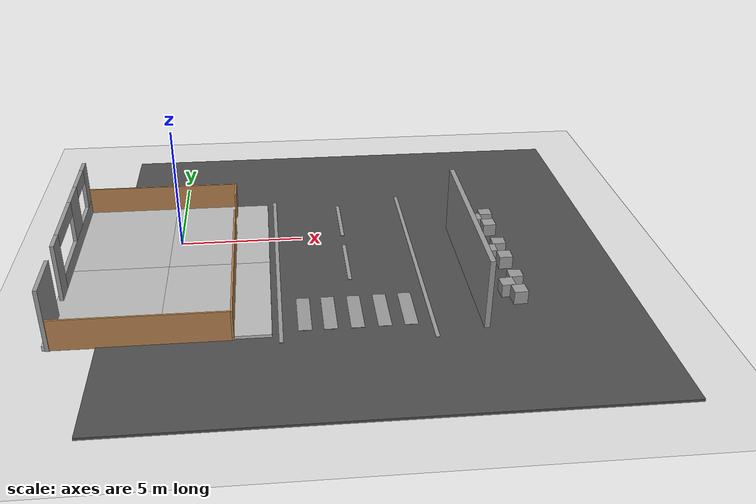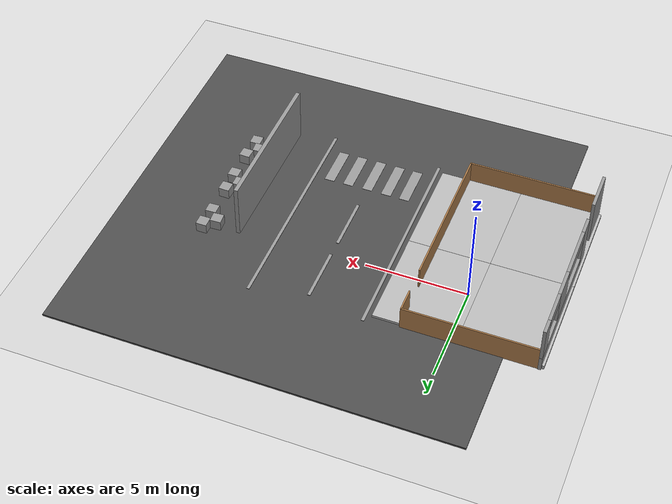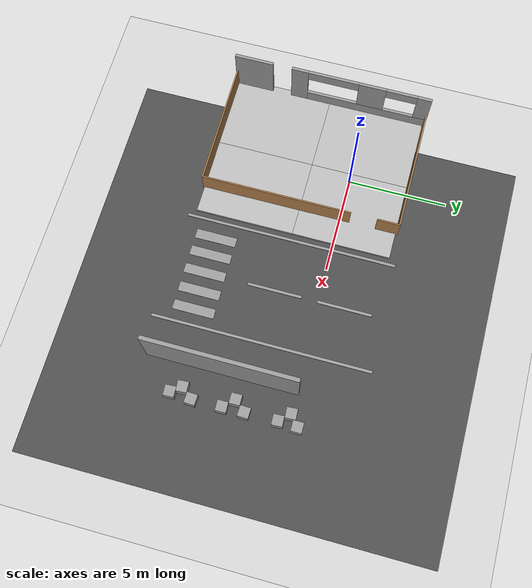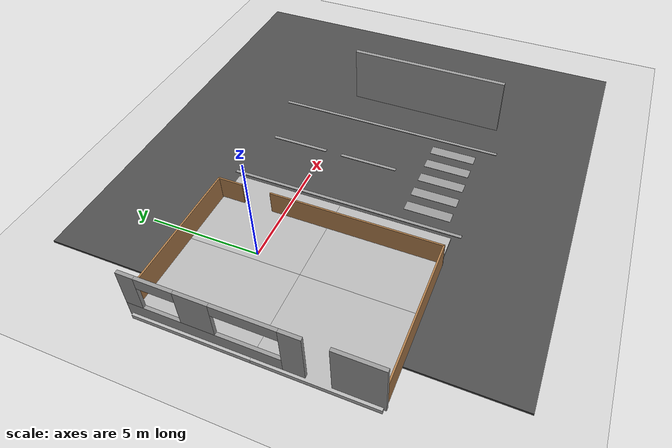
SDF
<sdf version="1.6">
 <world name="default">
  <model name="ground_plane">
   <static>1</static>
   <link name="link">
    <collision name="collision">
     <geometry><plane><normal>0 0 1</normal><size>100 100</size></plane></geometry>
     <surface>
      <contact><collide_bitmask>65535</collide_bitmask></contact>
      <friction><ode><mu>100</mu><mu2>50</mu2></ode></friction>
     </surface>
    </collision>
    <visual name="visual">
     <cast_shadows>0</cast_shadows>
     <geometry><plane><normal>0 0 1</normal><size>100 100</size></plane></geometry>
     <material>
      <script><uri>file://media/materials/scripts/gazebo.material</uri><name>Gazebo/Grey</name></script>
     </material>
    </visual>
   </link>
  </model>
  <model name="grey_wall_1">
   <static>1</static>
   <link name="link">
    <pose>0 0 1.4 0 -0 0</pose>
    <collision name="collision"><geometry><box><size>7.5 0.2 2.8</size></box></geometry></collision>
    <visual name="visual">
     <cast_shadows>0</cast_shadows>
     <geometry><box><size>7.5 0.2 2.8</size></box></geometry>
     <material>
      <script>
       <uri>model://grey_wall/materials/scripts</uri>
       <uri>model://grey_wall/materials/textures</uri>
       <name>vrc/grey_wall</name>
      </script>
     </material>
    </visual>
   </link>
   <pose>11.3606 -3.46174 0 0 -0 1.56876</pose>
  </model>
  <model name="mud_box">
   <static>1</static>
   <link name="link">
    <collision name="collision"><geometry><box><size>8 10 0.2</size></box></geometry></collision>
    <visual name="visual_1">
     <pose>-2 2.5 0 0 -0 0</pose>
     <cast_shadows>0</cast_shadows>
     <geometry><box><size>4 5 0.2</size></box></geometry>
     <material>
      <script>
       <uri>model://mud_box/materials/scripts</uri>
       <uri>model://mud_box/materials/textures</uri>
       <name>vrc/mud</name>
      </script>
     </material>
    </visual>
    <visual name="visual_2">
     <pose>2 2.5 0 0 -0 0</pose>
     <cast_shadows>0</cast_shadows>
     <geometry><box><size>4 5 0.2</size></box></geometry>
     <material>
      <script>
       <uri>model://mud_box/materials/scripts</uri>
       <uri>model://mud_box/materials/textures</uri>
       <name>vrc/mud</name>
      </script>
     </material>
    </visual>
    <visual name="visual_3">
     <pose>2 -2.5 0 0 -0 0</pose>
     <cast_shadows>0</cast_shadows>
     <geometry><box><size>4 5 0.2</size></box></geometry>
     <material>
      <script>
       <uri>model://mud_box/materials/scripts</uri>
       <uri>model://mud_box/materials/textures</uri>
       <name>vrc/mud</name>
      </script>
     </material>
    </visual>
    <visual name="visual_4">
     <pose>-2 -2.5 0 0 -0 0</pose>
     <cast_shadows>0</cast_shadows>
     <geometry><box><size>4 5 0.2</size></box></geometry>
     <material>
      <script>
       <uri>model://mud_box/materials/scripts</uri>
       <uri>model://mud_box/materials/textures</uri>
       <name>vrc/mud</name>
      </script>
     </material>
    </visual>
   </link>
   <pose>-0.378067 -2.09967 0.049154 0 -0 0</pose>
  </model>
  <model name="unit_box_0_clone_22_clone_14">
   <pose>12.4802 0.207968 0.299729 -0.001293 -0.020946 0.062639</pose>
   <link name="link">
    <inertial>
     <mass>1</mass>
     <inertia>
      <ixx>0.166667</ixx>
      <ixy>0</ixy>
      <ixz>0</ixz>
      <iyy>0.166667</iyy>
      <iyz>0</iyz>
      <izz>0.166667</izz>
     </inertia>
    </inertial>
    <collision name="collision">
     <geometry><box><size>0.530101 0.530101 0.530101</size></box></geometry>
    </collision>
    <visual name="visual">
     <geometry><box><size>0.530101 0.530101 0.530101</size></box></geometry>
     <material>
      <script><name>Gazebo/Grey</name><uri>file://media/materials/scripts/gazebo.material</uri></script>
     </material>
    </visual>
   </link>
  </model>
  <model name="unit_box_0_clone_22_clone_15">
   <pose>13.0071 0.621542 0.301237 -0.028066 3.9e-05 0.001398</pose>
   <link name="link">
    <inertial>
     <mass>1</mass>
     <inertia>
      <ixx>0.166667</ixx>
      <ixy>0</ixy>
      <ixz>0</ixz>
      <iyy>0.166667</iyy>
      <iyz>0</iyz>
      <izz>0.166667</izz>
     </inertia>
    </inertial>
    <collision name="collision">
     <geometry><box><size>0.530101 0.530101 0.530101</size></box></geometry>
    </collision>
    <visual name="visual">
     <geometry><box><size>0.530101 0.530101 0.530101</size></box></geometry>
     <material>
      <script><name>Gazebo/Grey</name><uri>file://media/materials/scripts/gazebo.material</uri></script>
     </material>
    </visual>
   </link>
  </model>
  <model name="unit_box_0_clone_22_clone_17">
   <pose>12.9535 -0.308319 0.299974 0.022308 -0.000883 0.039539</pose>
   <link name="link">
    <inertial>
     <mass>1</mass>
     <inertia>
      <ixx>0.166667</ixx>
      <ixy>0</ixy>
      <ixz>0</ixz>
      <iyy>0.166667</iyy>
      <iyz>0</iyz>
      <izz>0.166667</izz>
     </inertia>
    </inertial>
    <collision name="collision">
     <geometry><box><size>0.530101 0.530101 0.530101</size></box></geometry>
    </collision>
    <visual name="visual">
     <geometry><box><size>0.530101 0.530101 0.530101</size></box></geometry>
     <material>
      <script><name>Gazebo/Grey</name><uri>file://media/materials/scripts/gazebo.material</uri></script>
     </material>
    </visual>
   </link>
  </model>
  <model name="unit_box_0_clone_22_clone_18">
   <pose>12.986 -1.9289 0.301242 -0.027302 -0.0008 -0.029302</pose>
   <link name="link">
    <inertial>
     <mass>1</mass>
     <inertia>
      <ixx>0.166667</ixx>
      <ixy>0</ixy>
      <ixz>0</ixz>
      <iyy>0.166667</iyy>
      <iyz>0</iyz>
      <izz>0.166667</izz>
     </inertia>
    </inertial>
    <collision name="collision">
     <geometry><box><size>0.530101 0.530101 0.530101</size></box></geometry>
    </collision>
    <visual name="visual">
     <geometry><box><size>0.530101 0.530101 0.530101</size></box></geometry>
     <material>
      <script><name>Gazebo/Grey</name><uri>file://media/materials/scripts/gazebo.material</uri></script>
     </material>
    </visual>
   </link>
  </model>
  <model name="unit_box_0_clone_22_clone_19">
   <pose>12.5147 -2.46412 0.299758 0 -0.022379 0.005323</pose>
   <link name="link">
    <inertial>
     <mass>1</mass>
     <inertia>
      <ixx>0.166667</ixx>
      <ixy>0</ixy>
      <ixz>0</ixz>
      <iyy>0.166667</iyy>
      <iyz>0</iyz>
      <izz>0.166667</izz>
     </inertia>
    </inertial>
    <collision name="collision">
     <geometry><box><size>0.530101 0.530101 0.530101</size></box></geometry>
    </collision>
    <visual name="visual">
     <geometry><box><size>0.530101 0.530101 0.530101</size></box></geometry>
     <material>
      <script><name>Gazebo/Grey</name><uri>file://media/materials/scripts/gazebo.material</uri></script>
     </material>
    </visual>
   </link>
  </model>
  <model name="unit_box_0_clone_22_clone_20">
   <pose>13 -3.00001 0.293891 -7e-06 4e-06 0.018974</pose>
   <link name="link">
    <inertial>
     <mass>1</mass>
     <inertia>
      <ixx>0.166667</ixx>
      <ixy>0</ixy>
      <ixz>0</ixz>
      <iyy>0.166667</iyy>
      <iyz>0</iyz>
      <izz>0.166667</izz>
     </inertia>
    </inertial>
    <collision name="collision">
     <geometry><box><size>0.530101 0.530101 0.530101</size></box></geometry>
    </collision>
    <visual name="visual">
     <geometry><box><size>0.530101 0.530101 0.530101</size></box></geometry>
     <material>
      <script><name>Gazebo/Grey</name><uri>file://media/materials/scripts/gazebo.material</uri></script>
     </material>
    </visual>
   </link>
  </model>
  <model name="unit_box_0_clone_22_clone_22">
   <pose>13.0359 -4.48797 0.30161 -0.028519 -0.001007 -0.035293</pose>
   <link name="link">
    <inertial>
     <mass>1</mass>
     <inertia>
      <ixx>0.166667</ixx>
      <ixy>0</ixy>
      <ixz>0</ixz>
      <iyy>0.166667</iyy>
      <iyz>0</iyz>
      <izz>0.166667</izz>
     </inertia>
    </inertial>
    <collision name="collision">
     <geometry><box><size>0.530101 0.530101 0.530101</size></box></geometry>
    </collision>
    <visual name="visual">
     <geometry><box><size>0.530101 0.530101 0.530101</size></box></geometry>
     <material>
      <script><name>Gazebo/Grey</name><uri>file://media/materials/scripts/gazebo.material</uri></script>
     </material>
    </visual>
   </link>
  </model>
  <model name="unit_box_0_clone_22_clone_24">
   <pose>12.5941 -5.0363 0.30099 0 -0.027146 0.06489</pose>
   <link name="link">
    <inertial>
     <mass>1</mass>
     <inertia>
      <ixx>0.166667</ixx>
      <ixy>0</ixy>
      <ixz>0</ixz>
      <iyy>0.166667</iyy>
      <iyz>0</iyz>
      <izz>0.166667</izz>
     </inertia>
    </inertial>
    <collision name="collision">
     <geometry><box><size>0.530101 0.530101 0.530101</size></box></geometry>
    </collision>
    <visual name="visual">
     <geometry><box><size>0.530101 0.530101 0.530101</size></box></geometry>
     <material>
      <script><name>Gazebo/Grey</name><uri>file://media/materials/scripts/gazebo.material</uri></script>
     </material>
    </visual>
   </link>
  </model>
  <model name="unit_box_0_clone_22_clone_25">
   <pose>12.9423 -5.55077 0.293889 -1.1e-05 7e-06 0.049074</pose>
   <link name="link">
    <inertial>
     <mass>1</mass>
     <inertia>
      <ixx>0.166667</ixx>
      <ixy>0</ixy>
      <ixz>0</ixz>
      <iyy>0.166667</iyy>
      <iyz>0</iyz>
      <izz>0.166667</izz>
     </inertia>
    </inertial>
    <collision name="collision">
     <geometry><box><size>0.530101 0.530101 0.530101</size></box></geometry>
    </collision>
    <visual name="visual">
     <geometry><box><size>0.530101 0.530101 0.530101</size></box></geometry>
     <material>
      <script><name>Gazebo/Grey</name><uri>file://media/materials/scripts/gazebo.material</uri></script>
     </material>
    </visual>
   </link>
  </model>
  <model name="world_frame">
   <link name="Wall_100">
    <pose>-15.3271 -4.993 0 0 -0 0</pose>
    <visual name="Wall_100_Visual">
     <pose>0 0 0.625 0 -0 0</pose>
     <geometry><box><size>6.495 0.07 1.25</size></box></geometry>
     <material>
      <script><uri>file://media/materials/scripts/gazebo.material</uri><name>Gazebo/Wood</name></script>
      <ambient>1 1 1 1</ambient>
      <shader type="pixel"/>
      <diffuse>1 1 1 1</diffuse>
      <specular>0.2 0.2 0.2 1</specular>
      <emissive>0 0 0 1</emissive>
     </material>
     <meta><layer>0</layer></meta>
    </visual>
    <collision name="Wall_100_Collision">
     <pose>0 0 0.625 0 -0 0</pose>
     <geometry><box><size>6.495 0.07 1.25</size></box></geometry>
     <surface>
      <friction>
       <ode><mu>1</mu><mu2>1</mu2><fdir1>0 0 0</fdir1><slip1>0</slip1><slip2>0</slip2></ode>
       <torsional>
        <coefficient>1</coefficient>
        <patch_radius>0</patch_radius>
        <surface_radius>0</surface_radius>
        <use_patch_radius>1</use_patch_radius>
        <ode><slip>0</slip></ode>
       </torsional>
      </friction>
      <bounce><restitution_coefficient>0</restitution_coefficient><threshold>1e+06</threshold></bounce>
      <contact>
       <collide_without_contact>0</collide_without_contact>
       <collide_without_contact_bitmask>1</collide_without_contact_bitmask>
       <collide_bitmask>1</collide_bitmask>
       <ode>
        <soft_cfm>0</soft_cfm>
        <soft_erp>0.2</soft_erp>
        <kp>1e+13</kp>
        <kd>1</kd>
        <max_vel>0.01</max_vel>
        <min_depth>0</min_depth>
       </ode>
       <bullet>
        <split_impulse>1</split_impulse>
        <split_impulse_penetration_threshold>-0.01</split_impulse_penetration_threshold>
        <soft_cfm>0</soft_cfm>
        <soft_erp>0.2</soft_erp>
        <kp>1e+13</kp>
        <kd>1</kd>
       </bullet>
      </contact>
     </surface>
    </collision>
   </link>
   <link name="Wall_101">
    <pose>-12.1146 -1.193 0 0 -0 1.5708</pose>
    <visual name="Wall_101_Visual">
     <pose>0 0 0.625 0 -0 0</pose>
     <geometry><box><size>7.6704 0.07 1.25</size></box></geometry>
     <material>
      <script><uri>file://media/materials/scripts/gazebo.material</uri><name>Gazebo/Wood</name></script>
      <ambient>1 1 1 1</ambient>
      <shader type="pixel"/>
      <diffuse>1 1 1 1</diffuse>
      <specular>0.2 0.2 0.2 1</specular>
      <emissive>0 0 0 1</emissive>
     </material>
     <meta><layer>0</layer></meta>
    </visual>
    <collision name="Wall_101_Collision">
     <pose>0 0 0.625 0 -0 0</pose>
     <geometry><box><size>7.6704 0.07 1.25</size></box></geometry>
     <surface>
      <friction>
       <ode><mu>1</mu><mu2>1</mu2><fdir1>0 0 0</fdir1><slip1>0</slip1><slip2>0</slip2></ode>
       <torsional>
        <coefficient>1</coefficient>
        <patch_radius>0</patch_radius>
        <surface_radius>0</surface_radius>
        <use_patch_radius>1</use_patch_radius>
        <ode><slip>0</slip></ode>
       </torsional>
      </friction>
      <bounce><restitution_coefficient>0</restitution_coefficient><threshold>1e+06</threshold></bounce>
      <contact>
       <collide_without_contact>0</collide_without_contact>
       <collide_without_contact_bitmask>1</collide_without_contact_bitmask>
       <collide_bitmask>1</collide_bitmask>
       <ode>
        <soft_cfm>0</soft_cfm>
        <soft_erp>0.2</soft_erp>
        <kp>1e+13</kp>
        <kd>1</kd>
        <max_vel>0.01</max_vel>
        <min_depth>0</min_depth>
       </ode>
       <bullet>
        <split_impulse>1</split_impulse>
        <split_impulse_penetration_threshold>-0.01</split_impulse_penetration_threshold>
        <soft_cfm>0</soft_cfm>
        <soft_erp>0.2</soft_erp>
        <kp>1e+13</kp>
        <kd>1</kd>
       </bullet>
      </contact>
     </surface>
    </collision>
   </link>
   <link name="Wall_131">
    <pose>-18.5396 -4.068 0 0 -0 1.5708</pose>
    <visual name="Wall_131_Visual">
     <pose>0 0 1.25 0 -0 0</pose>
     <geometry><box><size>2 0.15 2.5</size></box></geometry>
     <material>
      <script><uri>file://media/materials/scripts/gazebo.material</uri><name>Gazebo/Grey</name></script>
      <ambient>1 1 1 1</ambient>
      <shader type="pixel"/>
      <diffuse>0.7 0.7 0.7 1</diffuse>
      <specular>0.01 0.01 0.01 1</specular>
      <emissive>0 0 0 1</emissive>
     </material>
     <meta><layer>0</layer></meta>
    </visual>
    <collision name="Wall_131_Collision">
     <pose>0 0 1.25 0 -0 0</pose>
     <geometry><box><size>2 0.15 2.5</size></box></geometry>
     <surface>
      <friction>
       <ode><mu>1</mu><mu2>1</mu2><fdir1>0 0 0</fdir1><slip1>0</slip1><slip2>0</slip2></ode>
       <torsional>
        <coefficient>1</coefficient>
        <patch_radius>0</patch_radius>
        <surface_radius>0</surface_radius>
        <use_patch_radius>1</use_patch_radius>
        <ode><slip>0</slip></ode>
       </torsional>
      </friction>
      <bounce><restitution_coefficient>0</restitution_coefficient><threshold>1e+06</threshold></bounce>
      <contact>
       <collide_without_contact>0</collide_without_contact>
       <collide_without_contact_bitmask>1</collide_without_contact_bitmask>
       <collide_bitmask>1</collide_bitmask>
       <ode>
        <soft_cfm>0</soft_cfm>
        <soft_erp>0.2</soft_erp>
        <kp>1e+13</kp>
        <kd>1</kd>
        <max_vel>0.01</max_vel>
        <min_depth>0</min_depth>
       </ode>
       <bullet>
        <split_impulse>1</split_impulse>
        <split_impulse_penetration_threshold>-0.01</split_impulse_penetration_threshold>
        <soft_cfm>0</soft_cfm>
        <soft_erp>0.2</soft_erp>
        <kp>1e+13</kp>
        <kd>1</kd>
       </bullet>
      </contact>
     </surface>
    </collision>
   </link>
   <link name="Wall_136">
    <pose>-18.5517 1.54493 0 0 -0 1.5708</pose>
    <visual name="Wall_136_Visual_0">
     <pose>-3.1871 0 1.25 0 -0 0</pose>
     <geometry><box><size>0.875792 0.15 2.5</size></box></geometry>
     <material>
      <script><uri>file://media/materials/scripts/gazebo.material</uri><name>Gazebo/Grey</name></script>
      <ambient>1 1 1 1</ambient>
      <shader type="pixel"/>
      <diffuse>0.7 0.7 0.7 1</diffuse>
      <specular>0.01 0.01 0.01 1</specular>
      <emissive>0 0 0 1</emissive>
     </material>
     <meta><layer>0</layer></meta>
    </visual>
    <visual name="Wall_136_Visual_1">
     <pose>0.437896 0 0.375 0 -0 0</pose>
     <geometry><box><size>6.37421 0.15 0.75</size></box></geometry>
     <material>
      <script><uri>file://media/materials/scripts/gazebo.material</uri><name>Gazebo/Grey</name></script>
      <ambient>1 1 1 1</ambient>
      <shader type="pixel"/>
      <diffuse>0.7 0.7 0.7 1</diffuse>
      <specular>0.01 0.01 0.01 1</specular>
      <emissive>0 0 0 1</emissive>
     </material>
     <meta><layer>0</layer></meta>
    </visual>
    <visual name="Wall_136_Visual_2">
     <pose>0.578795 0 1.625 0 -0 0</pose>
     <geometry><box><size>1.40688 0.15 1.75</size></box></geometry>
     <material>
      <script><uri>file://media/materials/scripts/gazebo.material</uri><name>Gazebo/Grey</name></script>
      <ambient>1 1 1 1</ambient>
      <shader type="pixel"/>
      <diffuse>0.7 0.7 0.7 1</diffuse>
      <specular>0.01 0.01 0.01 1</specular>
      <emissive>0 0 0 1</emissive>
     </material>
     <meta><layer>0</layer></meta>
    </visual>
    <visual name="Wall_136_Visual_3">
     <pose>3.25362 0 1.625 0 -0 0</pose>
     <geometry><box><size>0.742767 0.15 1.75</size></box></geometry>
     <material>
      <script><uri>file://media/materials/scripts/gazebo.material</uri><name>Gazebo/Grey</name></script>
      <ambient>1 1 1 1</ambient>
      <shader type="pixel"/>
      <diffuse>0.7 0.7 0.7 1</diffuse>
      <specular>0.01 0.01 0.01 1</specular>
      <emissive>0 0 0 1</emissive>
     </material>
     <meta><layer>0</layer></meta>
    </visual>
    <visual name="Wall_136_Visual_4">
     <pose>-1.43693 0 2.225 0 -0 0</pose>
     <geometry><box><size>2.62457 0.15 0.55</size></box></geometry>
     <material>
      <script><uri>file://media/materials/scripts/gazebo.material</uri><name>Gazebo/Grey</name></script>
      <ambient>1 1 1 1</ambient>
      <shader type="pixel"/>
      <diffuse>0.7 0.7 0.7 1</diffuse>
      <specular>0.01 0.01 0.01 1</specular>
      <emissive>0 0 0 1</emissive>
     </material>
     <meta><layer>0</layer></meta>
    </visual>
    <visual name="Wall_136_Visual_5">
     <pose>2.08223 0 2.225 0 -0 0</pose>
     <geometry><box><size>1.6 0.15 0.55</size></box></geometry>
     <material>
      <script><uri>file://media/materials/scripts/gazebo.material</uri><name>Gazebo/Grey</name></script>
      <ambient>1 1 1 1</ambient>
      <shader type="pixel"/>
      <diffuse>0.7 0.7 0.7 1</diffuse>
      <specular>0.01 0.01 0.01 1</specular>
      <emissive>0 0 0 1</emissive>
     </material>
     <meta><layer>0</layer></meta>
    </visual>
    <collision name="Wall_136_Collision_0">
     <pose>-3.1871 0 1.25 0 -0 0</pose>
     <geometry><box><size>0.875792 0.15 2.5</size></box></geometry>
     <surface>
      <friction>
       <ode><mu>1</mu><mu2>1</mu2><fdir1>0 0 0</fdir1><slip1>0</slip1><slip2>0</slip2></ode>
       <torsional>
        <coefficient>1</coefficient>
        <patch_radius>0</patch_radius>
        <surface_radius>0</surface_radius>
        <use_patch_radius>1</use_patch_radius>
        <ode><slip>0</slip></ode>
       </torsional>
      </friction>
      <bounce><restitution_coefficient>0</restitution_coefficient><threshold>1e+06</threshold></bounce>
      <contact>
       <collide_without_contact>0</collide_without_contact>
       <collide_without_contact_bitmask>1</collide_without_contact_bitmask>
       <collide_bitmask>1</collide_bitmask>
       <ode>
        <soft_cfm>0</soft_cfm>
        <soft_erp>0.2</soft_erp>
        <kp>1e+13</kp>
        <kd>1</kd>
        <max_vel>0.01</max_vel>
        <min_depth>0</min_depth>
       </ode>
       <bullet>
        <split_impulse>1</split_impulse>
        <split_impulse_penetration_threshold>-0.01</split_impulse_penetration_threshold>
        <soft_cfm>0</soft_cfm>
        <soft_erp>0.2</soft_erp>
        <kp>1e+13</kp>
        <kd>1</kd>
       </bullet>
      </contact>
     </surface>
    </collision>
    <collision name="Wall_136_Collision_1">
     <pose>0.437896 0 0.375 0 -0 0</pose>
     <geometry><box><size>6.37421 0.15 0.75</size></box></geometry>
     <surface>
      <friction>
       <ode><mu>1</mu><mu2>1</mu2><fdir1>0 0 0</fdir1><slip1>0</slip1><slip2>0</slip2></ode>
       <torsional>
        <coefficient>1</coefficient>
        <patch_radius>0</patch_radius>
        <surface_radius>0</surface_radius>
        <use_patch_radius>1</use_patch_radius>
        <ode><slip>0</slip></ode>
       </torsional>
      </friction>
      <bounce><restitution_coefficient>0</restitution_coefficient><threshold>1e+06</threshold></bounce>
      <contact>
       <collide_without_contact>0</collide_without_contact>
       <collide_without_contact_bitmask>1</collide_without_contact_bitmask>
       <collide_bitmask>1</collide_bitmask>
       <ode>
        <soft_cfm>0</soft_cfm>
        <soft_erp>0.2</soft_erp>
        <kp>1e+13</kp>
        <kd>1</kd>
        <max_vel>0.01</max_vel>
        <min_depth>0</min_depth>
       </ode>
       <bullet>
        <split_impulse>1</split_impulse>
        <split_impulse_penetration_threshold>-0.01</split_impulse_penetration_threshold>
        <soft_cfm>0</soft_cfm>
        <soft_erp>0.2</soft_erp>
        <kp>1e+13</kp>
        <kd>1</kd>
       </bullet>
      </contact>
     </surface>
    </collision>
    <collision name="Wall_136_Collision_2">
     <pose>0.578795 0 1.625 0 -0 0</pose>
     <geometry><box><size>1.40688 0.15 1.75</size></box></geometry>
     <surface>
      <friction>
       <ode><mu>1</mu><mu2>1</mu2><fdir1>0 0 0</fdir1><slip1>0</slip1><slip2>0</slip2></ode>
       <torsional>
        <coefficient>1</coefficient>
        <patch_radius>0</patch_radius>
        <surface_radius>0</surface_radius>
        <use_patch_radius>1</use_patch_radius>
        <ode><slip>0</slip></ode>
       </torsional>
      </friction>
      <bounce><restitution_coefficient>0</restitution_coefficient><threshold>1e+06</threshold></bounce>
      <contact>
       <collide_without_contact>0</collide_without_contact>
       <collide_without_contact_bitmask>1</collide_without_contact_bitmask>
       <collide_bitmask>1</collide_bitmask>
       <ode>
        <soft_cfm>0</soft_cfm>
        <soft_erp>0.2</soft_erp>
        <kp>1e+13</kp>
        <kd>1</kd>
        <max_vel>0.01</max_vel>
        <min_depth>0</min_depth>
       </ode>
       <bullet>
        <split_impulse>1</split_impulse>
        <split_impulse_penetration_threshold>-0.01</split_impulse_penetration_threshold>
        <soft_cfm>0</soft_cfm>
        <soft_erp>0.2</soft_erp>
        <kp>1e+13</kp>
        <kd>1</kd>
       </bullet>
      </contact>
     </surface>
    </collision>
    <collision name="Wall_136_Collision_4">
     <pose>-1.43693 0 2.225 0 -0 0</pose>
     <geometry><box><size>2.62457 0.15 0.55</size></box></geometry>
     <surface>
      <friction>
       <ode><mu>1</mu><mu2>1</mu2><fdir1>0 0 0</fdir1><slip1>0</slip1><slip2>0</slip2></ode>
       <torsional>
        <coefficient>1</coefficient>
        <patch_radius>0</patch_radius>
        <surface_radius>0</surface_radius>
        <use_patch_radius>1</use_patch_radius>
        <ode><slip>0</slip></ode>
       </torsional>
      </friction>
      <bounce><restitution_coefficient>0</restitution_coefficient><threshold>1e+06</threshold></bounce>
      <contact>
       <collide_without_contact>0</collide_without_contact>
       <collide_without_contact_bitmask>1</collide_without_contact_bitmask>
       <collide_bitmask>1</collide_bitmask>
       <ode>
        <soft_cfm>0</soft_cfm>
        <soft_erp>0.2</soft_erp>
        <kp>1e+13</kp>
        <kd>1</kd>
        <max_vel>0.01</max_vel>
        <min_depth>0</min_depth>
       </ode>
       <bullet>
        <split_impulse>1</split_impulse>
        <split_impulse_penetration_threshold>-0.01</split_impulse_penetration_threshold>
        <soft_cfm>0</soft_cfm>
        <soft_erp>0.2</soft_erp>
        <kp>1e+13</kp>
        <kd>1</kd>
       </bullet>
      </contact>
     </surface>
    </collision>
    <collision name="Wall_136_Collision_3">
     <pose>3.25362 0 1.625 0 -0 0</pose>
     <geometry><box><size>0.742767 0.15 1.75</size></box></geometry>
     <surface>
      <friction>
       <ode><mu>1</mu><mu2>1</mu2><fdir1>0 0 0</fdir1><slip1>0</slip1><slip2>0</slip2></ode>
       <torsional>
        <coefficient>1</coefficient>
        <patch_radius>0</patch_radius>
        <surface_radius>0</surface_radius>
        <use_patch_radius>1</use_patch_radius>
        <ode><slip>0</slip></ode>
       </torsional>
      </friction>
      <bounce><restitution_coefficient>0</restitution_coefficient><threshold>1e+06</threshold></bounce>
      <contact>
       <collide_without_contact>0</collide_without_contact>
       <collide_without_contact_bitmask>1</collide_without_contact_bitmask>
       <collide_bitmask>1</collide_bitmask>
       <ode>
        <soft_cfm>0</soft_cfm>
        <soft_erp>0.2</soft_erp>
        <kp>1e+13</kp>
        <kd>1</kd>
        <max_vel>0.01</max_vel>
        <min_depth>0</min_depth>
       </ode>
       <bullet>
        <split_impulse>1</split_impulse>
        <split_impulse_penetration_threshold>-0.01</split_impulse_penetration_threshold>
        <soft_cfm>0</soft_cfm>
        <soft_erp>0.2</soft_erp>
        <kp>1e+13</kp>
        <kd>1</kd>
       </bullet>
      </contact>
     </surface>
    </collision>
    <collision name="Wall_136_Collision_5">
     <pose>2.08223 0 2.225 0 -0 0</pose>
     <geometry><box><size>1.6 0.15 0.55</size></box></geometry>
     <surface>
      <friction>
       <ode><mu>1</mu><mu2>1</mu2><fdir1>0 0 0</fdir1><slip1>0</slip1><slip2>0</slip2></ode>
       <torsional>
        <coefficient>1</coefficient>
        <patch_radius>0</patch_radius>
        <surface_radius>0</surface_radius>
        <use_patch_radius>1</use_patch_radius>
        <ode><slip>0</slip></ode>
       </torsional>
      </friction>
      <bounce><restitution_coefficient>0</restitution_coefficient><threshold>1e+06</threshold></bounce>
      <contact>
       <collide_without_contact>0</collide_without_contact>
       <collide_without_contact_bitmask>1</collide_without_contact_bitmask>
       <collide_bitmask>1</collide_bitmask>
       <ode>
        <soft_cfm>0</soft_cfm>
        <soft_erp>0.2</soft_erp>
        <kp>1e+13</kp>
        <kd>1</kd>
        <max_vel>0.01</max_vel>
        <min_depth>0</min_depth>
       </ode>
       <bullet>
        <split_impulse>1</split_impulse>
        <split_impulse_penetration_threshold>-0.01</split_impulse_penetration_threshold>
        <soft_cfm>0</soft_cfm>
        <soft_erp>0.2</soft_erp>
        <kp>1e+13</kp>
        <kd>1</kd>
       </bullet>
      </contact>
     </surface>
    </collision>
   </link>
   <link name="Wall_215">
    <pose>-9.55135 -3.61132 0 0 -0 1.5708</pose>
    <inertial>
     <mass>1</mass>
     <inertia><ixx>1</ixx><ixy>0</ixy><ixz>0</ixz><iyy>1</iyy><iyz>0</iyz><izz>1</izz></inertia>
    </inertial>
    <visual name="Wall_215_Visual">
     <pose>0 0 0.019 0 -0 0</pose>
     <geometry><box><size>2.1 0.5 0.038</size></box></geometry>
     <material>
      <script><uri>file://media/materials/scripts/gazebo.material</uri><name>Gazebo/Grey</name></script>
      <ambient>1 1 1 1</ambient>
      <shader type="pixel"><normal_map>__default__</normal_map></shader>
      <diffuse>0.7 0.7 0.7 1</diffuse>
      <specular>0.01 0.01 0.01 1</specular>
      <emissive>0 0 0 1</emissive>
     </material>
     <meta><layer>0</layer></meta>
    </visual>
   </link>
   <link name="Wall_217">
    <pose>-7.64015 -3.614 0 0 0 -1.5708</pose>
    <inertial>
     <mass>1</mass>
     <inertia><ixx>1</ixx><ixy>0</ixy><ixz>0</ixz><iyy>1</iyy><iyz>0</iyz><izz>1</izz></inertia>
    </inertial>
    <visual name="Wall_217_Visual">
     <pose>0 0 0.019 0 -0 0</pose>
     <geometry><box><size>2.1 0.5 0.038</size></box></geometry>
     <material>
      <script><uri>file://media/materials/scripts/gazebo.material</uri><name>Gazebo/Grey</name></script>
      <ambient>1 1 1 1</ambient>
      <shader type="pixel"><normal_map>__default__</normal_map></shader>
      <diffuse>0.7 0.7 0.7 1</diffuse>
      <specular>0.01 0.01 0.01 1</specular>
      <emissive>0 0 0 1</emissive>
     </material>
     <meta><layer>0</layer></meta>
    </visual>
   </link>
   <link name="Wall_219">
    <pose>-8.62134 -3.61132 0 0 0 -1.5708</pose>
    <inertial>
     <mass>1</mass>
     <inertia><ixx>1</ixx><ixy>0</ixy><ixz>0</ixz><iyy>1</iyy><iyz>0</iyz><izz>1</izz></inertia>
    </inertial>
    <visual name="Wall_219_Visual">
     <pose>0 0 0.019 0 -0 0</pose>
     <geometry><box><size>2.1 0.5 0.038</size></box></geometry>
     <material>
      <script><uri>file://media/materials/scripts/gazebo.material</uri><name>Gazebo/Grey</name></script>
      <ambient>1 1 1 1</ambient>
      <shader type="pixel"><normal_map>__default__</normal_map></shader>
      <diffuse>0.7 0.7 0.7 1</diffuse>
      <specular>0.01 0.01 0.01 1</specular>
      <emissive>0 0 0 1</emissive>
     </material>
     <meta><layer>0</layer></meta>
    </visual>
   </link>
   <link name="Wall_221">
    <pose>-6.65002 -3.59362 0 0 0 -1.5708</pose>
    <inertial>
     <mass>1</mass>
     <inertia><ixx>1</ixx><ixy>0</ixy><ixz>0</ixz><iyy>1</iyy><iyz>0</iyz><izz>1</izz></inertia>
    </inertial>
    <visual name="Wall_221_Visual">
     <pose>0 0 0.019 0 -0 0</pose>
     <geometry><box><size>2.1 0.5 0.038</size></box></geometry>
     <material>
      <script><uri>file://media/materials/scripts/gazebo.material</uri><name>Gazebo/Grey</name></script>
      <ambient>1 1 1 1</ambient>
      <shader type="pixel"><normal_map>__default__</normal_map></shader>
      <diffuse>0.7 0.7 0.7 1</diffuse>
      <specular>0.01 0.01 0.01 1</specular>
      <emissive>0 0 0 1</emissive>
     </material>
     <meta><layer>0</layer></meta>
    </visual>
   </link>
   <link name="Wall_223">
    <pose>-5.68214 -3.58162 0 0 0 -1.5708</pose>
    <inertial>
     <mass>1</mass>
     <inertia><ixx>1</ixx><ixy>0</ixy><ixz>0</ixz><iyy>1</iyy><iyz>0</iyz><izz>1</izz></inertia>
    </inertial>
    <visual name="Wall_223_Visual">
     <pose>0 0 0.019 0 -0 0</pose>
     <geometry><box><size>2.1 0.5 0.038</size></box></geometry>
     <material>
      <script><uri>file://media/materials/scripts/gazebo.material</uri><name>Gazebo/Grey</name></script>
      <ambient>1 1 1 1</ambient>
      <shader type="pixel"><normal_map>__default__</normal_map></shader>
      <diffuse>0.7 0.7 0.7 1</diffuse>
      <specular>0.01 0.01 0.01 1</specular>
      <emissive>0 0 0 1</emissive>
     </material>
     <meta><layer>0</layer></meta>
    </visual>
   </link>
   <link name="Wall_90">
    <pose>-15.2896 5.107 0 0 -0 0</pose>
    <visual name="Wall_90_Visual">
     <pose>0 0 0.625 0 -0 0</pose>
     <geometry><box><size>6.42 0.07 1.25</size></box></geometry>
     <material>
      <script><uri>file://media/materials/scripts/gazebo.material</uri><name>Gazebo/Wood</name></script>
      <ambient>1 1 1 1</ambient>
      <shader type="pixel"/>
      <diffuse>1 1 1 1</diffuse>
      <specular>0.2 0.2 0.2 1</specular>
      <emissive>0 0 0 1</emissive>
     </material>
     <meta><layer>0</layer></meta>
    </visual>
    <collision name="Wall_90_Collision">
     <pose>0 0 0.625 0 -0 0</pose>
     <geometry><box><size>6.42 0.07 1.25</size></box></geometry>
     <surface>
      <friction>
       <ode><mu>1</mu><mu2>1</mu2><fdir1>0 0 0</fdir1><slip1>0</slip1><slip2>0</slip2></ode>
       <torsional>
        <coefficient>1</coefficient>
        <patch_radius>0</patch_radius>
        <surface_radius>0</surface_radius>
        <use_patch_radius>1</use_patch_radius>
        <ode><slip>0</slip></ode>
       </torsional>
      </friction>
      <bounce><restitution_coefficient>0</restitution_coefficient><threshold>1e+06</threshold></bounce>
      <contact>
       <collide_without_contact>0</collide_without_contact>
       <collide_without_contact_bitmask>1</collide_without_contact_bitmask>
       <collide_bitmask>1</collide_bitmask>
       <ode>
        <soft_cfm>0</soft_cfm>
        <soft_erp>0.2</soft_erp>
        <kp>1e+13</kp>
        <kd>1</kd>
        <max_vel>0.01</max_vel>
        <min_depth>0</min_depth>
       </ode>
       <bullet>
        <split_impulse>1</split_impulse>
        <split_impulse_penetration_threshold>-0.01</split_impulse_penetration_threshold>
        <soft_cfm>0</soft_cfm>
        <soft_erp>0.2</soft_erp>
        <kp>1e+13</kp>
        <kd>1</kd>
       </bullet>
      </contact>
     </surface>
    </collision>
   </link>
   <link name="Wall_91">
    <pose>-12.1146 4.557 0 0 0 -1.5708</pose>
    <visual name="Wall_91_Visual">
     <pose>0 0 0.625 0 -0 0</pose>
     <geometry><box><size>1.16959 0.07 1.25</size></box></geometry>
     <material>
      <script><uri>file://media/materials/scripts/gazebo.material</uri><name>Gazebo/Wood</name></script>
      <ambient>1 1 1 1</ambient>
      <shader type="pixel"/>
      <diffuse>1 1 1 1</diffuse>
      <specular>0.2 0.2 0.2 1</specular>
      <emissive>0 0 0 1</emissive>
     </material>
     <meta><layer>0</layer></meta>
    </visual>
    <collision name="Wall_91_Collision">
     <pose>0 0 0.625 0 -0 0</pose>
     <geometry><box><size>1.16959 0.07 1.25</size></box></geometry>
     <surface>
      <friction>
       <ode><mu>1</mu><mu2>1</mu2><fdir1>0 0 0</fdir1><slip1>0</slip1><slip2>0</slip2></ode>
       <torsional>
        <coefficient>1</coefficient>
        <patch_radius>0</patch_radius>
        <surface_radius>0</surface_radius>
        <use_patch_radius>1</use_patch_radius>
        <ode><slip>0</slip></ode>
       </torsional>
      </friction>
      <bounce><restitution_coefficient>0</restitution_coefficient><threshold>1e+06</threshold></bounce>
      <contact>
       <collide_without_contact>0</collide_without_contact>
       <collide_without_contact_bitmask>1</collide_without_contact_bitmask>
       <collide_bitmask>1</collide_bitmask>
       <ode>
        <soft_cfm>0</soft_cfm>
        <soft_erp>0.2</soft_erp>
        <kp>1e+13</kp>
        <kd>1</kd>
        <max_vel>0.01</max_vel>
        <min_depth>0</min_depth>
       </ode>
       <bullet>
        <split_impulse>1</split_impulse>
        <split_impulse_penetration_threshold>-0.01</split_impulse_penetration_threshold>
        <soft_cfm>0</soft_cfm>
        <soft_erp>0.2</soft_erp>
        <kp>1e+13</kp>
        <kd>1</kd>
       </bullet>
      </contact>
     </surface>
    </collision>
   </link>
   <static>1</static>
   <pose>14.3624 -2.13506 0 0 -0 0</pose>
  </model>
  <model name="road_marks">
   <link name="Wall_63">
    <pose>2.76474 -0.160071 0 0 0 -1.5708</pose>
    <inertial>
     <inertia><ixx>0</ixx><ixy>0</ixy><ixz>0</ixz><iyy>0</iyy><iyz>0</iyz><izz>0</izz></inertia>
     <mass>0</mass>
    </inertial>
    <visual name="Wall_63_Visual">
     <pose>0 0 1.25 0 -0 0</pose>
     <geometry><box><size>11.0346 0.15 2.5</size></box></geometry>
     <material>
      <script><uri>file://media/materials/scripts/gazebo.material</uri><name>Gazebo/Grey</name></script>
      <ambient>1 1 1 1</ambient>
      <shader type="pixel"/>
      <diffuse>0.7 0.7 0.7 1</diffuse>
      <specular>0.01 0.01 0.01 1</specular>
      <emissive>0 0 0 1</emissive>
     </material>
     <meta><layer>0</layer></meta>
    </visual>
    <collision name="Wall_63_Collision">
     <pose>0 0 1.25 0 -0 0</pose>
     <geometry><box><size>11.0346 0.15 2.5</size></box></geometry>
     <surface>
      <friction>
       <ode><mu>1</mu><mu2>1</mu2><fdir1>0 0 0</fdir1><slip1>0</slip1><slip2>0</slip2></ode>
       <torsional>
        <coefficient>1</coefficient>
        <patch_radius>0</patch_radius>
        <surface_radius>0</surface_radius>
        <use_patch_radius>1</use_patch_radius>
        <ode><slip>0</slip></ode>
       </torsional>
      </friction>
      <bounce><restitution_coefficient>0</restitution_coefficient><threshold>1e+06</threshold></bounce>
      <contact>
       <collide_without_contact>0</collide_without_contact>
       <collide_without_contact_bitmask>1</collide_without_contact_bitmask>
       <collide_bitmask>1</collide_bitmask>
       <ode>
        <soft_cfm>0</soft_cfm>
        <soft_erp>0.2</soft_erp>
        <kp>1e+13</kp>
        <kd>1</kd>
        <max_vel>0.01</max_vel>
        <min_depth>0</min_depth>
       </ode>
       <bullet>
        <split_impulse>1</split_impulse>
        <split_impulse_penetration_threshold>-0.01</split_impulse_penetration_threshold>
        <soft_cfm>0</soft_cfm>
        <soft_erp>0.2</soft_erp>
        <kp>1e+13</kp>
        <kd>1</kd>
       </bullet>
      </contact>
     </surface>
    </collision>
   </link>
   <link name="Wall_68">
    <pose>-2.78871 -0.141191 0 0 0 -1.5708</pose>
    <visual name="Wall_68_Visual">
     <pose>0 0 1.25 0 -0 0</pose>
     <geometry><box><size>10.75 0.15 2.5</size></box></geometry>
     <material>
      <script><uri>file://media/materials/scripts/gazebo.material</uri><name>Gazebo/Grey</name></script>
      <ambient>1 1 1 1</ambient>
      <shader type="pixel"/>
      <diffuse>0.7 0.7 0.7 1</diffuse>
      <specular>0.01 0.01 0.01 1</specular>
      <emissive>0 0 0 1</emissive>
     </material>
     <meta><layer>0</layer></meta>
    </visual>
    <collision name="Wall_68_Collision">
     <pose>0 0 1.25 0 -0 0</pose>
     <geometry><box><size>10.75 0.15 2.5</size></box></geometry>
     <surface>
      <friction>
       <ode><mu>1</mu><mu2>1</mu2><fdir1>0 0 0</fdir1><slip1>0</slip1><slip2>0</slip2></ode>
       <torsional>
        <coefficient>1</coefficient>
        <patch_radius>0</patch_radius>
        <surface_radius>0</surface_radius>
        <use_patch_radius>1</use_patch_radius>
        <ode><slip>0</slip></ode>
       </torsional>
      </friction>
      <bounce><restitution_coefficient>0</restitution_coefficient><threshold>1e+06</threshold></bounce>
      <contact>
       <collide_without_contact>0</collide_without_contact>
       <collide_without_contact_bitmask>1</collide_without_contact_bitmask>
       <collide_bitmask>1</collide_bitmask>
       <ode>
        <soft_cfm>0</soft_cfm>
        <soft_erp>0.2</soft_erp>
        <kp>1e+13</kp>
        <kd>1</kd>
        <max_vel>0.01</max_vel>
        <min_depth>0</min_depth>
       </ode>
       <bullet>
        <split_impulse>1</split_impulse>
        <split_impulse_penetration_threshold>-0.01</split_impulse_penetration_threshold>
        <soft_cfm>0</soft_cfm>
        <soft_erp>0.2</soft_erp>
        <kp>1e+13</kp>
        <kd>1</kd>
       </bullet>
      </contact>
     </surface>
    </collision>
   </link>
   <link name="Wall_70">
    <pose>0.023699 3.32873 0 0 0 -1.5708</pose>
    <visual name="Wall_70_Visual">
     <pose>0 0 1.25 0 -0 0</pose>
     <geometry><box><size>2.75 0.15 2.5</size></box></geometry>
     <material>
      <script><uri>file://media/materials/scripts/gazebo.material</uri><name>Gazebo/Grey</name></script>
      <ambient>1 1 1 1</ambient>
      <shader type="pixel"/>
      <diffuse>0.7 0.7 0.7 1</diffuse>
      <specular>0.01 0.01 0.01 1</specular>
      <emissive>0 0 0 1</emissive>
     </material>
     <meta><layer>0</layer></meta>
    </visual>
    <collision name="Wall_70_Collision">
     <pose>0 0 1.25 0 -0 0</pose>
     <geometry><box><size>2.75 0.15 2.5</size></box></geometry>
     <surface>
      <friction>
       <ode><mu>1</mu><mu2>1</mu2><fdir1>0 0 0</fdir1><slip1>0</slip1><slip2>0</slip2></ode>
       <torsional>
        <coefficient>1</coefficient>
        <patch_radius>0</patch_radius>
        <surface_radius>0</surface_radius>
        <use_patch_radius>1</use_patch_radius>
        <ode><slip>0</slip></ode>
       </torsional>
      </friction>
      <bounce><restitution_coefficient>0</restitution_coefficient><threshold>1e+06</threshold></bounce>
      <contact>
       <collide_without_contact>0</collide_without_contact>
       <collide_without_contact_bitmask>1</collide_without_contact_bitmask>
       <collide_bitmask>1</collide_bitmask>
       <ode>
        <soft_cfm>0</soft_cfm>
        <soft_erp>0.2</soft_erp>
        <kp>1e+13</kp>
        <kd>1</kd>
        <max_vel>0.01</max_vel>
        <min_depth>0</min_depth>
       </ode>
       <bullet>
        <split_impulse>1</split_impulse>
        <split_impulse_penetration_threshold>-0.01</split_impulse_penetration_threshold>
        <soft_cfm>0</soft_cfm>
        <soft_erp>0.2</soft_erp>
        <kp>1e+13</kp>
        <kd>1</kd>
       </bullet>
      </contact>
     </surface>
    </collision>
   </link>
   <link name="Wall_72">
    <pose>0.008046 -0.206342 0 0 0 -1.5708</pose>
    <visual name="Wall_72_Visual">
     <pose>0 0 1.25 0 -0 0</pose>
     <geometry><box><size>2.75 0.15 2.5</size></box></geometry>
     <material>
      <script><uri>file://media/materials/scripts/gazebo.material</uri><name>Gazebo/Grey</name></script>
      <ambient>1 1 1 1</ambient>
      <shader type="pixel"/>
      <diffuse>0.7 0.7 0.7 1</diffuse>
      <specular>0.01 0.01 0.01 1</specular>
      <emissive>0 0 0 1</emissive>
     </material>
     <meta><layer>0</layer></meta>
    </visual>
    <collision name="Wall_72_Collision">
     <pose>0 0 1.25 0 -0 0</pose>
     <geometry><box><size>2.75 0.15 2.5</size></box></geometry>
     <surface>
      <friction>
       <ode><mu>1</mu><mu2>1</mu2><fdir1>0 0 0</fdir1><slip1>0</slip1><slip2>0</slip2></ode>
       <torsional>
        <coefficient>1</coefficient>
        <patch_radius>0</patch_radius>
        <surface_radius>0</surface_radius>
        <use_patch_radius>1</use_patch_radius>
        <ode><slip>0</slip></ode>
       </torsional>
      </friction>
      <bounce><restitution_coefficient>0</restitution_coefficient><threshold>1e+06</threshold></bounce>
      <contact>
       <collide_without_contact>0</collide_without_contact>
       <collide_without_contact_bitmask>1</collide_without_contact_bitmask>
       <collide_bitmask>1</collide_bitmask>
       <ode>
        <soft_cfm>0</soft_cfm>
        <soft_erp>0.2</soft_erp>
        <kp>1e+13</kp>
        <kd>1</kd>
        <max_vel>0.01</max_vel>
        <min_depth>0</min_depth>
       </ode>
       <bullet>
        <split_impulse>1</split_impulse>
        <split_impulse_penetration_threshold>-0.01</split_impulse_penetration_threshold>
        <soft_cfm>0</soft_cfm>
        <soft_erp>0.2</soft_erp>
        <kp>1e+13</kp>
        <kd>1</kd>
       </bullet>
      </contact>
     </surface>
    </collision>
   </link>
   <static>1</static>
   <pose>6.72366 -1.9621 -2.44447 0 -0 0</pose>
  </model>
  <model name="asphalt_plane">
   <static>1</static>
   <link name="link">
    <collision name="collision"><geometry><box><size>20 20 0.1</size></box></geometry></collision>
    <visual name="visual">
     <cast_shadows>0</cast_shadows>
     <geometry><box><size>20 20 0.1</size></box></geometry>
     <material>
      <script>
       <uri>model://asphalt_plane/materials/scripts</uri>
       <uri>model://asphalt_plane/materials/textures</uri>
       <name>vrc/asphalt</name>
      </script>
     </material>
    </visual>
   </link>
   <pose>7.45828 -1.78814 -0.021157 0 -0 0</pose>
  </model>
 </world>
</sdf>
